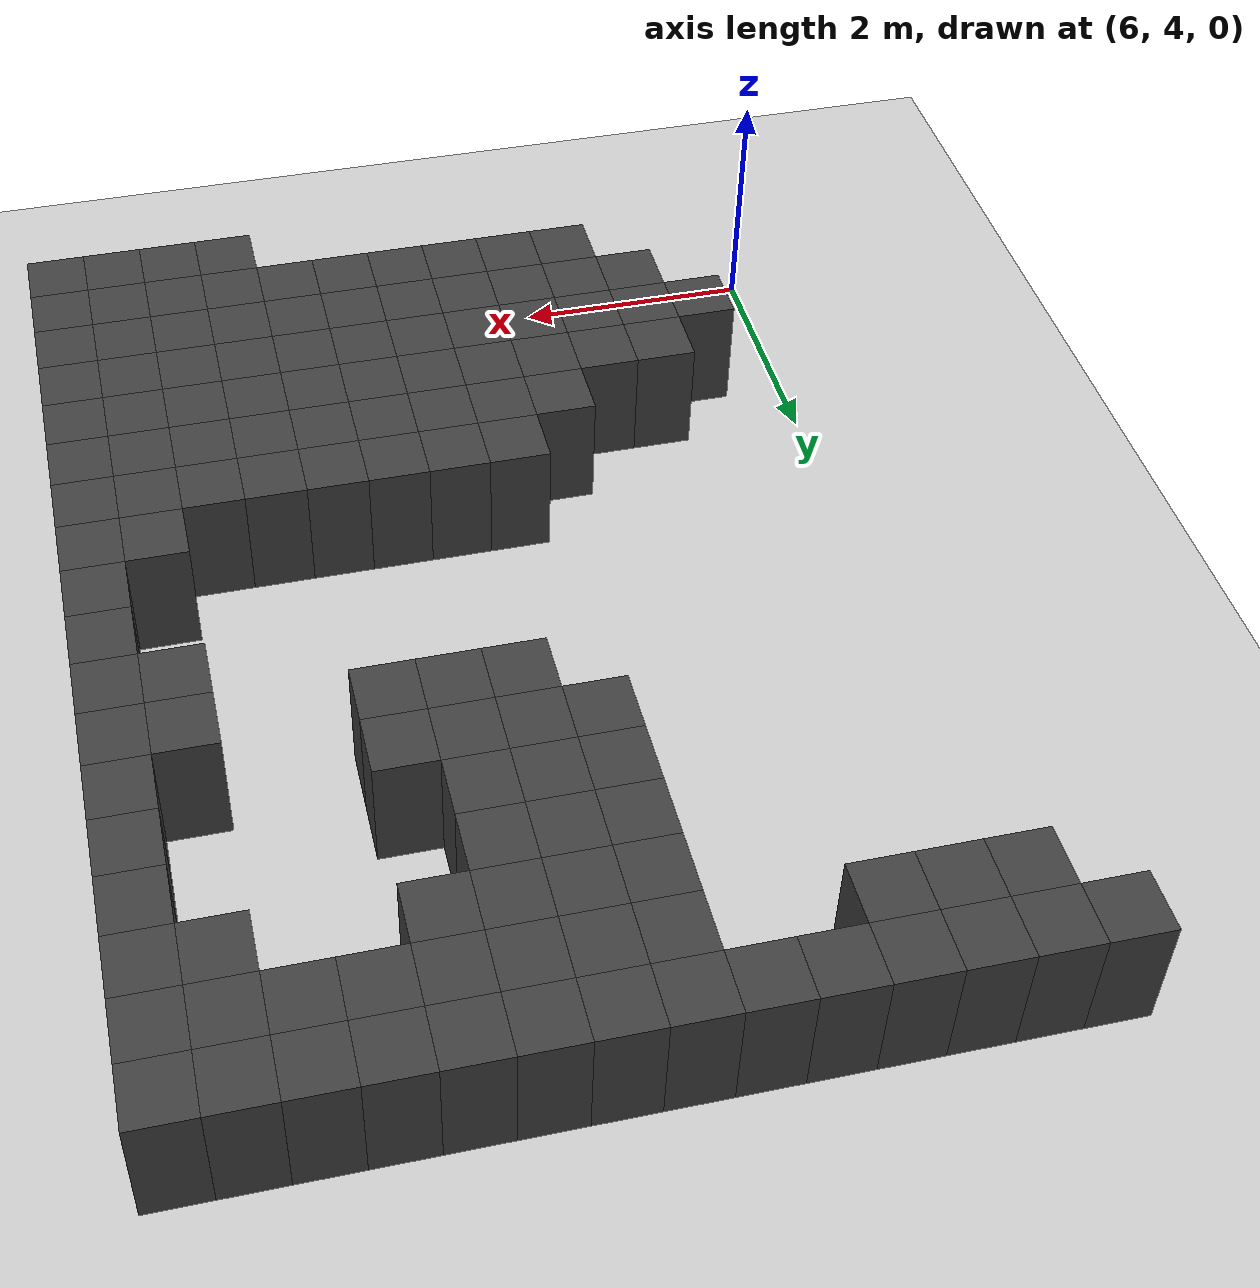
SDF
<sdf version="1.7">
 <world name="map_9705">
  <model name="ground_plane">
   <static>true</static>
   <link name="link">
    <collision name="collision">
     <geometry><plane><normal>0 0 1</normal><size>200 200</size></plane></geometry>
    </collision>
    <visual name="visual">
     <geometry><plane><normal>0 0 1</normal><size>200 200</size></plane></geometry>
     <material><ambient>0.8 0.8 0.8 1</ambient><diffuse>0.8 0.8 0.8 1</diffuse></material>
    </visual>
   </link>
  </model>
  <model name="maze_environment">
   <static>true</static>
   <link name="wall_36">
    <pose>5.750 12.250 0.500 0 0 0</pose>
    <collision name="col"><geometry><box><size>0.5 0.5 1.0</size></box></geometry></collision>
    <visual name="vis">
     <geometry><box><size>0.5 0.5 1.0</size></box></geometry>
     <material><ambient>0.15 0.15 0.15 1</ambient><diffuse>0.25 0.25 0.25 1</diffuse></material>
    </visual>
   </link>
   <link name="wall_37">
    <pose>6.250 12.250 0.500 0 0 0</pose>
    <collision name="col"><geometry><box><size>0.5 0.5 1.0</size></box></geometry></collision>
    <visual name="vis">
     <geometry><box><size>0.5 0.5 1.0</size></box></geometry>
     <material><ambient>0.15 0.15 0.15 1</ambient><diffuse>0.25 0.25 0.25 1</diffuse></material>
    </visual>
   </link>
   <link name="wall_38">
    <pose>6.750 12.250 0.500 0 0 0</pose>
    <collision name="col"><geometry><box><size>0.5 0.5 1.0</size></box></geometry></collision>
    <visual name="vis">
     <geometry><box><size>0.5 0.5 1.0</size></box></geometry>
     <material><ambient>0.15 0.15 0.15 1</ambient><diffuse>0.25 0.25 0.25 1</diffuse></material>
    </visual>
   </link>
   <link name="wall_39">
    <pose>7.250 12.250 0.500 0 0 0</pose>
    <collision name="col"><geometry><box><size>0.5 0.5 1.0</size></box></geometry></collision>
    <visual name="vis">
     <geometry><box><size>0.5 0.5 1.0</size></box></geometry>
     <material><ambient>0.15 0.15 0.15 1</ambient><diffuse>0.25 0.25 0.25 1</diffuse></material>
    </visual>
   </link>
   <link name="wall_40">
    <pose>7.750 12.250 0.500 0 0 0</pose>
    <collision name="col"><geometry><box><size>0.5 0.5 1.0</size></box></geometry></collision>
    <visual name="vis">
     <geometry><box><size>0.5 0.5 1.0</size></box></geometry>
     <material><ambient>0.15 0.15 0.15 1</ambient><diffuse>0.25 0.25 0.25 1</diffuse></material>
    </visual>
   </link>
   <link name="wall_41">
    <pose>8.250 12.250 0.500 0 0 0</pose>
    <collision name="col"><geometry><box><size>0.5 0.5 1.0</size></box></geometry></collision>
    <visual name="vis">
     <geometry><box><size>0.5 0.5 1.0</size></box></geometry>
     <material><ambient>0.15 0.15 0.15 1</ambient><diffuse>0.25 0.25 0.25 1</diffuse></material>
    </visual>
   </link>
   <link name="wall_42">
    <pose>8.750 12.250 0.500 0 0 0</pose>
    <collision name="col"><geometry><box><size>0.5 0.5 1.0</size></box></geometry></collision>
    <visual name="vis">
     <geometry><box><size>0.5 0.5 1.0</size></box></geometry>
     <material><ambient>0.15 0.15 0.15 1</ambient><diffuse>0.25 0.25 0.25 1</diffuse></material>
    </visual>
   </link>
   <link name="wall_43">
    <pose>9.250 12.250 0.500 0 0 0</pose>
    <collision name="col"><geometry><box><size>0.5 0.5 1.0</size></box></geometry></collision>
    <visual name="vis">
     <geometry><box><size>0.5 0.5 1.0</size></box></geometry>
     <material><ambient>0.15 0.15 0.15 1</ambient><diffuse>0.25 0.25 0.25 1</diffuse></material>
    </visual>
   </link>
   <link name="wall_44">
    <pose>9.750 12.250 0.500 0 0 0</pose>
    <collision name="col"><geometry><box><size>0.5 0.5 1.0</size></box></geometry></collision>
    <visual name="vis">
     <geometry><box><size>0.5 0.5 1.0</size></box></geometry>
     <material><ambient>0.15 0.15 0.15 1</ambient><diffuse>0.25 0.25 0.25 1</diffuse></material>
    </visual>
   </link>
   <link name="wall_45">
    <pose>10.250 12.250 0.500 0 0 0</pose>
    <collision name="col"><geometry><box><size>0.5 0.5 1.0</size></box></geometry></collision>
    <visual name="vis">
     <geometry><box><size>0.5 0.5 1.0</size></box></geometry>
     <material><ambient>0.15 0.15 0.15 1</ambient><diffuse>0.25 0.25 0.25 1</diffuse></material>
    </visual>
   </link>
   <link name="wall_46">
    <pose>10.750 12.250 0.500 0 0 0</pose>
    <collision name="col"><geometry><box><size>0.5 0.5 1.0</size></box></geometry></collision>
    <visual name="vis">
     <geometry><box><size>0.5 0.5 1.0</size></box></geometry>
     <material><ambient>0.15 0.15 0.15 1</ambient><diffuse>0.25 0.25 0.25 1</diffuse></material>
    </visual>
   </link>
   <link name="wall_47">
    <pose>11.250 12.250 0.500 0 0 0</pose>
    <collision name="col"><geometry><box><size>0.5 0.5 1.0</size></box></geometry></collision>
    <visual name="vis">
     <geometry><box><size>0.5 0.5 1.0</size></box></geometry>
     <material><ambient>0.15 0.15 0.15 1</ambient><diffuse>0.25 0.25 0.25 1</diffuse></material>
    </visual>
   </link>
   <link name="wall_48">
    <pose>11.750 12.250 0.500 0 0 0</pose>
    <collision name="col"><geometry><box><size>0.5 0.5 1.0</size></box></geometry></collision>
    <visual name="vis">
     <geometry><box><size>0.5 0.5 1.0</size></box></geometry>
     <material><ambient>0.15 0.15 0.15 1</ambient><diffuse>0.25 0.25 0.25 1</diffuse></material>
    </visual>
   </link>
   <link name="wall_49">
    <pose>12.250 12.250 0.500 0 0 0</pose>
    <collision name="col"><geometry><box><size>0.5 0.5 1.0</size></box></geometry></collision>
    <visual name="vis">
     <geometry><box><size>0.5 0.5 1.0</size></box></geometry>
     <material><ambient>0.15 0.15 0.15 1</ambient><diffuse>0.25 0.25 0.25 1</diffuse></material>
    </visual>
   </link>
   <link name="wall_68">
    <pose>6.250 11.750 0.500 0 0 0</pose>
    <collision name="col"><geometry><box><size>0.5 0.5 1.0</size></box></geometry></collision>
    <visual name="vis">
     <geometry><box><size>0.5 0.5 1.0</size></box></geometry>
     <material><ambient>0.15 0.15 0.15 1</ambient><diffuse>0.25 0.25 0.25 1</diffuse></material>
    </visual>
   </link>
   <link name="wall_69">
    <pose>6.750 11.750 0.500 0 0 0</pose>
    <collision name="col"><geometry><box><size>0.5 0.5 1.0</size></box></geometry></collision>
    <visual name="vis">
     <geometry><box><size>0.5 0.5 1.0</size></box></geometry>
     <material><ambient>0.15 0.15 0.15 1</ambient><diffuse>0.25 0.25 0.25 1</diffuse></material>
    </visual>
   </link>
   <link name="wall_70">
    <pose>7.250 11.750 0.500 0 0 0</pose>
    <collision name="col"><geometry><box><size>0.5 0.5 1.0</size></box></geometry></collision>
    <visual name="vis">
     <geometry><box><size>0.5 0.5 1.0</size></box></geometry>
     <material><ambient>0.15 0.15 0.15 1</ambient><diffuse>0.25 0.25 0.25 1</diffuse></material>
    </visual>
   </link>
   <link name="wall_71">
    <pose>8.750 11.750 0.500 0 0 0</pose>
    <collision name="col"><geometry><box><size>0.5 0.5 1.0</size></box></geometry></collision>
    <visual name="vis">
     <geometry><box><size>0.5 0.5 1.0</size></box></geometry>
     <material><ambient>0.15 0.15 0.15 1</ambient><diffuse>0.25 0.25 0.25 1</diffuse></material>
    </visual>
   </link>
   <link name="wall_72">
    <pose>9.250 11.750 0.500 0 0 0</pose>
    <collision name="col"><geometry><box><size>0.5 0.5 1.0</size></box></geometry></collision>
    <visual name="vis">
     <geometry><box><size>0.5 0.5 1.0</size></box></geometry>
     <material><ambient>0.15 0.15 0.15 1</ambient><diffuse>0.25 0.25 0.25 1</diffuse></material>
    </visual>
   </link>
   <link name="wall_73">
    <pose>9.750 11.750 0.500 0 0 0</pose>
    <collision name="col"><geometry><box><size>0.5 0.5 1.0</size></box></geometry></collision>
    <visual name="vis">
     <geometry><box><size>0.5 0.5 1.0</size></box></geometry>
     <material><ambient>0.15 0.15 0.15 1</ambient><diffuse>0.25 0.25 0.25 1</diffuse></material>
    </visual>
   </link>
   <link name="wall_74">
    <pose>10.250 11.750 0.500 0 0 0</pose>
    <collision name="col"><geometry><box><size>0.5 0.5 1.0</size></box></geometry></collision>
    <visual name="vis">
     <geometry><box><size>0.5 0.5 1.0</size></box></geometry>
     <material><ambient>0.15 0.15 0.15 1</ambient><diffuse>0.25 0.25 0.25 1</diffuse></material>
    </visual>
   </link>
   <link name="wall_75">
    <pose>10.750 11.750 0.500 0 0 0</pose>
    <collision name="col"><geometry><box><size>0.5 0.5 1.0</size></box></geometry></collision>
    <visual name="vis">
     <geometry><box><size>0.5 0.5 1.0</size></box></geometry>
     <material><ambient>0.15 0.15 0.15 1</ambient><diffuse>0.25 0.25 0.25 1</diffuse></material>
    </visual>
   </link>
   <link name="wall_76">
    <pose>11.250 11.750 0.500 0 0 0</pose>
    <collision name="col"><geometry><box><size>0.5 0.5 1.0</size></box></geometry></collision>
    <visual name="vis">
     <geometry><box><size>0.5 0.5 1.0</size></box></geometry>
     <material><ambient>0.15 0.15 0.15 1</ambient><diffuse>0.25 0.25 0.25 1</diffuse></material>
    </visual>
   </link>
   <link name="wall_77">
    <pose>11.750 11.750 0.500 0 0 0</pose>
    <collision name="col"><geometry><box><size>0.5 0.5 1.0</size></box></geometry></collision>
    <visual name="vis">
     <geometry><box><size>0.5 0.5 1.0</size></box></geometry>
     <material><ambient>0.15 0.15 0.15 1</ambient><diffuse>0.25 0.25 0.25 1</diffuse></material>
    </visual>
   </link>
   <link name="wall_78">
    <pose>12.250 11.750 0.500 0 0 0</pose>
    <collision name="col"><geometry><box><size>0.5 0.5 1.0</size></box></geometry></collision>
    <visual name="vis">
     <geometry><box><size>0.5 0.5 1.0</size></box></geometry>
     <material><ambient>0.15 0.15 0.15 1</ambient><diffuse>0.25 0.25 0.25 1</diffuse></material>
    </visual>
   </link>
   <link name="wall_93">
    <pose>8.750 11.250 0.500 0 0 0</pose>
    <collision name="col"><geometry><box><size>0.5 0.5 1.0</size></box></geometry></collision>
    <visual name="vis">
     <geometry><box><size>0.5 0.5 1.0</size></box></geometry>
     <material><ambient>0.15 0.15 0.15 1</ambient><diffuse>0.25 0.25 0.25 1</diffuse></material>
    </visual>
   </link>
   <link name="wall_94">
    <pose>9.250 11.250 0.500 0 0 0</pose>
    <collision name="col"><geometry><box><size>0.5 0.5 1.0</size></box></geometry></collision>
    <visual name="vis">
     <geometry><box><size>0.5 0.5 1.0</size></box></geometry>
     <material><ambient>0.15 0.15 0.15 1</ambient><diffuse>0.25 0.25 0.25 1</diffuse></material>
    </visual>
   </link>
   <link name="wall_95">
    <pose>9.750 11.250 0.500 0 0 0</pose>
    <collision name="col"><geometry><box><size>0.5 0.5 1.0</size></box></geometry></collision>
    <visual name="vis">
     <geometry><box><size>0.5 0.5 1.0</size></box></geometry>
     <material><ambient>0.15 0.15 0.15 1</ambient><diffuse>0.25 0.25 0.25 1</diffuse></material>
    </visual>
   </link>
   <link name="wall_96">
    <pose>10.250 11.250 0.500 0 0 0</pose>
    <collision name="col"><geometry><box><size>0.5 0.5 1.0</size></box></geometry></collision>
    <visual name="vis">
     <geometry><box><size>0.5 0.5 1.0</size></box></geometry>
     <material><ambient>0.15 0.15 0.15 1</ambient><diffuse>0.25 0.25 0.25 1</diffuse></material>
    </visual>
   </link>
   <link name="wall_97">
    <pose>11.750 11.250 0.500 0 0 0</pose>
    <collision name="col"><geometry><box><size>0.5 0.5 1.0</size></box></geometry></collision>
    <visual name="vis">
     <geometry><box><size>0.5 0.5 1.0</size></box></geometry>
     <material><ambient>0.15 0.15 0.15 1</ambient><diffuse>0.25 0.25 0.25 1</diffuse></material>
    </visual>
   </link>
   <link name="wall_98">
    <pose>12.250 11.250 0.500 0 0 0</pose>
    <collision name="col"><geometry><box><size>0.5 0.5 1.0</size></box></geometry></collision>
    <visual name="vis">
     <geometry><box><size>0.5 0.5 1.0</size></box></geometry>
     <material><ambient>0.15 0.15 0.15 1</ambient><diffuse>0.25 0.25 0.25 1</diffuse></material>
    </visual>
   </link>
   <link name="wall_110">
    <pose>8.750 10.750 0.500 0 0 0</pose>
    <collision name="col"><geometry><box><size>0.5 0.5 1.0</size></box></geometry></collision>
    <visual name="vis">
     <geometry><box><size>0.5 0.5 1.0</size></box></geometry>
     <material><ambient>0.15 0.15 0.15 1</ambient><diffuse>0.25 0.25 0.25 1</diffuse></material>
    </visual>
   </link>
   <link name="wall_111">
    <pose>9.250 10.750 0.500 0 0 0</pose>
    <collision name="col"><geometry><box><size>0.5 0.5 1.0</size></box></geometry></collision>
    <visual name="vis">
     <geometry><box><size>0.5 0.5 1.0</size></box></geometry>
     <material><ambient>0.15 0.15 0.15 1</ambient><diffuse>0.25 0.25 0.25 1</diffuse></material>
    </visual>
   </link>
   <link name="wall_112">
    <pose>9.750 10.750 0.500 0 0 0</pose>
    <collision name="col"><geometry><box><size>0.5 0.5 1.0</size></box></geometry></collision>
    <visual name="vis">
     <geometry><box><size>0.5 0.5 1.0</size></box></geometry>
     <material><ambient>0.15 0.15 0.15 1</ambient><diffuse>0.25 0.25 0.25 1</diffuse></material>
    </visual>
   </link>
   <link name="wall_113">
    <pose>12.250 10.750 0.500 0 0 0</pose>
    <collision name="col"><geometry><box><size>0.5 0.5 1.0</size></box></geometry></collision>
    <visual name="vis">
     <geometry><box><size>0.5 0.5 1.0</size></box></geometry>
     <material><ambient>0.15 0.15 0.15 1</ambient><diffuse>0.25 0.25 0.25 1</diffuse></material>
    </visual>
   </link>
   <link name="wall_129">
    <pose>8.750 10.250 0.500 0 0 0</pose>
    <collision name="col"><geometry><box><size>0.5 0.5 1.0</size></box></geometry></collision>
    <visual name="vis">
     <geometry><box><size>0.5 0.5 1.0</size></box></geometry>
     <material><ambient>0.15 0.15 0.15 1</ambient><diffuse>0.25 0.25 0.25 1</diffuse></material>
    </visual>
   </link>
   <link name="wall_130">
    <pose>9.250 10.250 0.500 0 0 0</pose>
    <collision name="col"><geometry><box><size>0.5 0.5 1.0</size></box></geometry></collision>
    <visual name="vis">
     <geometry><box><size>0.5 0.5 1.0</size></box></geometry>
     <material><ambient>0.15 0.15 0.15 1</ambient><diffuse>0.25 0.25 0.25 1</diffuse></material>
    </visual>
   </link>
   <link name="wall_131">
    <pose>9.750 10.250 0.500 0 0 0</pose>
    <collision name="col"><geometry><box><size>0.5 0.5 1.0</size></box></geometry></collision>
    <visual name="vis">
     <geometry><box><size>0.5 0.5 1.0</size></box></geometry>
     <material><ambient>0.15 0.15 0.15 1</ambient><diffuse>0.25 0.25 0.25 1</diffuse></material>
    </visual>
   </link>
   <link name="wall_132">
    <pose>12.250 10.250 0.500 0 0 0</pose>
    <collision name="col"><geometry><box><size>0.5 0.5 1.0</size></box></geometry></collision>
    <visual name="vis">
     <geometry><box><size>0.5 0.5 1.0</size></box></geometry>
     <material><ambient>0.15 0.15 0.15 1</ambient><diffuse>0.25 0.25 0.25 1</diffuse></material>
    </visual>
   </link>
   <link name="wall_151">
    <pose>8.750 9.750 0.500 0 0 0</pose>
    <collision name="col"><geometry><box><size>0.5 0.5 1.0</size></box></geometry></collision>
    <visual name="vis">
     <geometry><box><size>0.5 0.5 1.0</size></box></geometry>
     <material><ambient>0.15 0.15 0.15 1</ambient><diffuse>0.25 0.25 0.25 1</diffuse></material>
    </visual>
   </link>
   <link name="wall_152">
    <pose>9.250 9.750 0.500 0 0 0</pose>
    <collision name="col"><geometry><box><size>0.5 0.5 1.0</size></box></geometry></collision>
    <visual name="vis">
     <geometry><box><size>0.5 0.5 1.0</size></box></geometry>
     <material><ambient>0.15 0.15 0.15 1</ambient><diffuse>0.25 0.25 0.25 1</diffuse></material>
    </visual>
   </link>
   <link name="wall_153">
    <pose>9.750 9.750 0.500 0 0 0</pose>
    <collision name="col"><geometry><box><size>0.5 0.5 1.0</size></box></geometry></collision>
    <visual name="vis">
     <geometry><box><size>0.5 0.5 1.0</size></box></geometry>
     <material><ambient>0.15 0.15 0.15 1</ambient><diffuse>0.25 0.25 0.25 1</diffuse></material>
    </visual>
   </link>
   <link name="wall_154">
    <pose>10.250 9.750 0.500 0 0 0</pose>
    <collision name="col"><geometry><box><size>0.5 0.5 1.0</size></box></geometry></collision>
    <visual name="vis">
     <geometry><box><size>0.5 0.5 1.0</size></box></geometry>
     <material><ambient>0.15 0.15 0.15 1</ambient><diffuse>0.25 0.25 0.25 1</diffuse></material>
    </visual>
   </link>
   <link name="wall_155">
    <pose>12.250 9.750 0.500 0 0 0</pose>
    <collision name="col"><geometry><box><size>0.5 0.5 1.0</size></box></geometry></collision>
    <visual name="vis">
     <geometry><box><size>0.5 0.5 1.0</size></box></geometry>
     <material><ambient>0.15 0.15 0.15 1</ambient><diffuse>0.25 0.25 0.25 1</diffuse></material>
    </visual>
   </link>
   <link name="wall_175">
    <pose>9.250 9.250 0.500 0 0 0</pose>
    <collision name="col"><geometry><box><size>0.5 0.5 1.0</size></box></geometry></collision>
    <visual name="vis">
     <geometry><box><size>0.5 0.5 1.0</size></box></geometry>
     <material><ambient>0.15 0.15 0.15 1</ambient><diffuse>0.25 0.25 0.25 1</diffuse></material>
    </visual>
   </link>
   <link name="wall_176">
    <pose>9.750 9.250 0.500 0 0 0</pose>
    <collision name="col"><geometry><box><size>0.5 0.5 1.0</size></box></geometry></collision>
    <visual name="vis">
     <geometry><box><size>0.5 0.5 1.0</size></box></geometry>
     <material><ambient>0.15 0.15 0.15 1</ambient><diffuse>0.25 0.25 0.25 1</diffuse></material>
    </visual>
   </link>
   <link name="wall_177">
    <pose>10.250 9.250 0.500 0 0 0</pose>
    <collision name="col"><geometry><box><size>0.5 0.5 1.0</size></box></geometry></collision>
    <visual name="vis">
     <geometry><box><size>0.5 0.5 1.0</size></box></geometry>
     <material><ambient>0.15 0.15 0.15 1</ambient><diffuse>0.25 0.25 0.25 1</diffuse></material>
    </visual>
   </link>
   <link name="wall_178">
    <pose>11.750 9.250 0.500 0 0 0</pose>
    <collision name="col"><geometry><box><size>0.5 0.5 1.0</size></box></geometry></collision>
    <visual name="vis">
     <geometry><box><size>0.5 0.5 1.0</size></box></geometry>
     <material><ambient>0.15 0.15 0.15 1</ambient><diffuse>0.25 0.25 0.25 1</diffuse></material>
    </visual>
   </link>
   <link name="wall_179">
    <pose>12.250 9.250 0.500 0 0 0</pose>
    <collision name="col"><geometry><box><size>0.5 0.5 1.0</size></box></geometry></collision>
    <visual name="vis">
     <geometry><box><size>0.5 0.5 1.0</size></box></geometry>
     <material><ambient>0.15 0.15 0.15 1</ambient><diffuse>0.25 0.25 0.25 1</diffuse></material>
    </visual>
   </link>
   <link name="wall_194">
    <pose>11.750 8.750 0.500 0 0 0</pose>
    <collision name="col"><geometry><box><size>0.5 0.5 1.0</size></box></geometry></collision>
    <visual name="vis">
     <geometry><box><size>0.5 0.5 1.0</size></box></geometry>
     <material><ambient>0.15 0.15 0.15 1</ambient><diffuse>0.25 0.25 0.25 1</diffuse></material>
    </visual>
   </link>
   <link name="wall_195">
    <pose>12.250 8.750 0.500 0 0 0</pose>
    <collision name="col"><geometry><box><size>0.5 0.5 1.0</size></box></geometry></collision>
    <visual name="vis">
     <geometry><box><size>0.5 0.5 1.0</size></box></geometry>
     <material><ambient>0.15 0.15 0.15 1</ambient><diffuse>0.25 0.25 0.25 1</diffuse></material>
    </visual>
   </link>
   <link name="wall_208">
    <pose>12.250 8.250 0.500 0 0 0</pose>
    <collision name="col"><geometry><box><size>0.5 0.5 1.0</size></box></geometry></collision>
    <visual name="vis">
     <geometry><box><size>0.5 0.5 1.0</size></box></geometry>
     <material><ambient>0.15 0.15 0.15 1</ambient><diffuse>0.25 0.25 0.25 1</diffuse></material>
    </visual>
   </link>
   <link name="wall_217">
    <pose>12.250 7.750 0.500 0 0 0</pose>
    <collision name="col"><geometry><box><size>0.5 0.5 1.0</size></box></geometry></collision>
    <visual name="vis">
     <geometry><box><size>0.5 0.5 1.0</size></box></geometry>
     <material><ambient>0.15 0.15 0.15 1</ambient><diffuse>0.25 0.25 0.25 1</diffuse></material>
    </visual>
   </link>
   <link name="wall_229">
    <pose>11.750 7.250 0.500 0 0 0</pose>
    <collision name="col"><geometry><box><size>0.5 0.5 1.0</size></box></geometry></collision>
    <visual name="vis">
     <geometry><box><size>0.5 0.5 1.0</size></box></geometry>
     <material><ambient>0.15 0.15 0.15 1</ambient><diffuse>0.25 0.25 0.25 1</diffuse></material>
    </visual>
   </link>
   <link name="wall_230">
    <pose>12.250 7.250 0.500 0 0 0</pose>
    <collision name="col"><geometry><box><size>0.5 0.5 1.0</size></box></geometry></collision>
    <visual name="vis">
     <geometry><box><size>0.5 0.5 1.0</size></box></geometry>
     <material><ambient>0.15 0.15 0.15 1</ambient><diffuse>0.25 0.25 0.25 1</diffuse></material>
    </visual>
   </link>
   <link name="wall_244">
    <pose>8.750 6.750 0.500 0 0 0</pose>
    <collision name="col"><geometry><box><size>0.5 0.5 1.0</size></box></geometry></collision>
    <visual name="vis">
     <geometry><box><size>0.5 0.5 1.0</size></box></geometry>
     <material><ambient>0.15 0.15 0.15 1</ambient><diffuse>0.25 0.25 0.25 1</diffuse></material>
    </visual>
   </link>
   <link name="wall_245">
    <pose>9.250 6.750 0.500 0 0 0</pose>
    <collision name="col"><geometry><box><size>0.5 0.5 1.0</size></box></geometry></collision>
    <visual name="vis">
     <geometry><box><size>0.5 0.5 1.0</size></box></geometry>
     <material><ambient>0.15 0.15 0.15 1</ambient><diffuse>0.25 0.25 0.25 1</diffuse></material>
    </visual>
   </link>
   <link name="wall_246">
    <pose>9.750 6.750 0.500 0 0 0</pose>
    <collision name="col"><geometry><box><size>0.5 0.5 1.0</size></box></geometry></collision>
    <visual name="vis">
     <geometry><box><size>0.5 0.5 1.0</size></box></geometry>
     <material><ambient>0.15 0.15 0.15 1</ambient><diffuse>0.25 0.25 0.25 1</diffuse></material>
    </visual>
   </link>
   <link name="wall_247">
    <pose>10.250 6.750 0.500 0 0 0</pose>
    <collision name="col"><geometry><box><size>0.5 0.5 1.0</size></box></geometry></collision>
    <visual name="vis">
     <geometry><box><size>0.5 0.5 1.0</size></box></geometry>
     <material><ambient>0.15 0.15 0.15 1</ambient><diffuse>0.25 0.25 0.25 1</diffuse></material>
    </visual>
   </link>
   <link name="wall_248">
    <pose>10.750 6.750 0.500 0 0 0</pose>
    <collision name="col"><geometry><box><size>0.5 0.5 1.0</size></box></geometry></collision>
    <visual name="vis">
     <geometry><box><size>0.5 0.5 1.0</size></box></geometry>
     <material><ambient>0.15 0.15 0.15 1</ambient><diffuse>0.25 0.25 0.25 1</diffuse></material>
    </visual>
   </link>
   <link name="wall_249">
    <pose>11.250 6.750 0.500 0 0 0</pose>
    <collision name="col"><geometry><box><size>0.5 0.5 1.0</size></box></geometry></collision>
    <visual name="vis">
     <geometry><box><size>0.5 0.5 1.0</size></box></geometry>
     <material><ambient>0.15 0.15 0.15 1</ambient><diffuse>0.25 0.25 0.25 1</diffuse></material>
    </visual>
   </link>
   <link name="wall_250">
    <pose>11.750 6.750 0.500 0 0 0</pose>
    <collision name="col"><geometry><box><size>0.5 0.5 1.0</size></box></geometry></collision>
    <visual name="vis">
     <geometry><box><size>0.5 0.5 1.0</size></box></geometry>
     <material><ambient>0.15 0.15 0.15 1</ambient><diffuse>0.25 0.25 0.25 1</diffuse></material>
    </visual>
   </link>
   <link name="wall_251">
    <pose>12.250 6.750 0.500 0 0 0</pose>
    <collision name="col"><geometry><box><size>0.5 0.5 1.0</size></box></geometry></collision>
    <visual name="vis">
     <geometry><box><size>0.5 0.5 1.0</size></box></geometry>
     <material><ambient>0.15 0.15 0.15 1</ambient><diffuse>0.25 0.25 0.25 1</diffuse></material>
    </visual>
   </link>
   <link name="wall_276">
    <pose>8.250 6.250 0.500 0 0 0</pose>
    <collision name="col"><geometry><box><size>0.5 0.5 1.0</size></box></geometry></collision>
    <visual name="vis">
     <geometry><box><size>0.5 0.5 1.0</size></box></geometry>
     <material><ambient>0.15 0.15 0.15 1</ambient><diffuse>0.25 0.25 0.25 1</diffuse></material>
    </visual>
   </link>
   <link name="wall_277">
    <pose>8.750 6.250 0.500 0 0 0</pose>
    <collision name="col"><geometry><box><size>0.5 0.5 1.0</size></box></geometry></collision>
    <visual name="vis">
     <geometry><box><size>0.5 0.5 1.0</size></box></geometry>
     <material><ambient>0.15 0.15 0.15 1</ambient><diffuse>0.25 0.25 0.25 1</diffuse></material>
    </visual>
   </link>
   <link name="wall_278">
    <pose>9.250 6.250 0.500 0 0 0</pose>
    <collision name="col"><geometry><box><size>0.5 0.5 1.0</size></box></geometry></collision>
    <visual name="vis">
     <geometry><box><size>0.5 0.5 1.0</size></box></geometry>
     <material><ambient>0.15 0.15 0.15 1</ambient><diffuse>0.25 0.25 0.25 1</diffuse></material>
    </visual>
   </link>
   <link name="wall_279">
    <pose>9.750 6.250 0.500 0 0 0</pose>
    <collision name="col"><geometry><box><size>0.5 0.5 1.0</size></box></geometry></collision>
    <visual name="vis">
     <geometry><box><size>0.5 0.5 1.0</size></box></geometry>
     <material><ambient>0.15 0.15 0.15 1</ambient><diffuse>0.25 0.25 0.25 1</diffuse></material>
    </visual>
   </link>
   <link name="wall_280">
    <pose>10.250 6.250 0.500 0 0 0</pose>
    <collision name="col"><geometry><box><size>0.5 0.5 1.0</size></box></geometry></collision>
    <visual name="vis">
     <geometry><box><size>0.5 0.5 1.0</size></box></geometry>
     <material><ambient>0.15 0.15 0.15 1</ambient><diffuse>0.25 0.25 0.25 1</diffuse></material>
    </visual>
   </link>
   <link name="wall_281">
    <pose>10.750 6.250 0.500 0 0 0</pose>
    <collision name="col"><geometry><box><size>0.5 0.5 1.0</size></box></geometry></collision>
    <visual name="vis">
     <geometry><box><size>0.5 0.5 1.0</size></box></geometry>
     <material><ambient>0.15 0.15 0.15 1</ambient><diffuse>0.25 0.25 0.25 1</diffuse></material>
    </visual>
   </link>
   <link name="wall_282">
    <pose>11.250 6.250 0.500 0 0 0</pose>
    <collision name="col"><geometry><box><size>0.5 0.5 1.0</size></box></geometry></collision>
    <visual name="vis">
     <geometry><box><size>0.5 0.5 1.0</size></box></geometry>
     <material><ambient>0.15 0.15 0.15 1</ambient><diffuse>0.25 0.25 0.25 1</diffuse></material>
    </visual>
   </link>
   <link name="wall_283">
    <pose>11.750 6.250 0.500 0 0 0</pose>
    <collision name="col"><geometry><box><size>0.5 0.5 1.0</size></box></geometry></collision>
    <visual name="vis">
     <geometry><box><size>0.5 0.5 1.0</size></box></geometry>
     <material><ambient>0.15 0.15 0.15 1</ambient><diffuse>0.25 0.25 0.25 1</diffuse></material>
    </visual>
   </link>
   <link name="wall_284">
    <pose>12.250 6.250 0.500 0 0 0</pose>
    <collision name="col"><geometry><box><size>0.5 0.5 1.0</size></box></geometry></collision>
    <visual name="vis">
     <geometry><box><size>0.5 0.5 1.0</size></box></geometry>
     <material><ambient>0.15 0.15 0.15 1</ambient><diffuse>0.25 0.25 0.25 1</diffuse></material>
    </visual>
   </link>
   <link name="wall_307">
    <pose>7.250 5.750 0.500 0 0 0</pose>
    <collision name="col"><geometry><box><size>0.5 0.5 1.0</size></box></geometry></collision>
    <visual name="vis">
     <geometry><box><size>0.5 0.5 1.0</size></box></geometry>
     <material><ambient>0.15 0.15 0.15 1</ambient><diffuse>0.25 0.25 0.25 1</diffuse></material>
    </visual>
   </link>
   <link name="wall_308">
    <pose>7.750 5.750 0.500 0 0 0</pose>
    <collision name="col"><geometry><box><size>0.5 0.5 1.0</size></box></geometry></collision>
    <visual name="vis">
     <geometry><box><size>0.5 0.5 1.0</size></box></geometry>
     <material><ambient>0.15 0.15 0.15 1</ambient><diffuse>0.25 0.25 0.25 1</diffuse></material>
    </visual>
   </link>
   <link name="wall_309">
    <pose>8.250 5.750 0.500 0 0 0</pose>
    <collision name="col"><geometry><box><size>0.5 0.5 1.0</size></box></geometry></collision>
    <visual name="vis">
     <geometry><box><size>0.5 0.5 1.0</size></box></geometry>
     <material><ambient>0.15 0.15 0.15 1</ambient><diffuse>0.25 0.25 0.25 1</diffuse></material>
    </visual>
   </link>
   <link name="wall_310">
    <pose>8.750 5.750 0.500 0 0 0</pose>
    <collision name="col"><geometry><box><size>0.5 0.5 1.0</size></box></geometry></collision>
    <visual name="vis">
     <geometry><box><size>0.5 0.5 1.0</size></box></geometry>
     <material><ambient>0.15 0.15 0.15 1</ambient><diffuse>0.25 0.25 0.25 1</diffuse></material>
    </visual>
   </link>
   <link name="wall_311">
    <pose>9.250 5.750 0.500 0 0 0</pose>
    <collision name="col"><geometry><box><size>0.5 0.5 1.0</size></box></geometry></collision>
    <visual name="vis">
     <geometry><box><size>0.5 0.5 1.0</size></box></geometry>
     <material><ambient>0.15 0.15 0.15 1</ambient><diffuse>0.25 0.25 0.25 1</diffuse></material>
    </visual>
   </link>
   <link name="wall_312">
    <pose>9.750 5.750 0.500 0 0 0</pose>
    <collision name="col"><geometry><box><size>0.5 0.5 1.0</size></box></geometry></collision>
    <visual name="vis">
     <geometry><box><size>0.5 0.5 1.0</size></box></geometry>
     <material><ambient>0.15 0.15 0.15 1</ambient><diffuse>0.25 0.25 0.25 1</diffuse></material>
    </visual>
   </link>
   <link name="wall_313">
    <pose>10.250 5.750 0.500 0 0 0</pose>
    <collision name="col"><geometry><box><size>0.5 0.5 1.0</size></box></geometry></collision>
    <visual name="vis">
     <geometry><box><size>0.5 0.5 1.0</size></box></geometry>
     <material><ambient>0.15 0.15 0.15 1</ambient><diffuse>0.25 0.25 0.25 1</diffuse></material>
    </visual>
   </link>
   <link name="wall_314">
    <pose>10.750 5.750 0.500 0 0 0</pose>
    <collision name="col"><geometry><box><size>0.5 0.5 1.0</size></box></geometry></collision>
    <visual name="vis">
     <geometry><box><size>0.5 0.5 1.0</size></box></geometry>
     <material><ambient>0.15 0.15 0.15 1</ambient><diffuse>0.25 0.25 0.25 1</diffuse></material>
    </visual>
   </link>
   <link name="wall_315">
    <pose>11.250 5.750 0.500 0 0 0</pose>
    <collision name="col"><geometry><box><size>0.5 0.5 1.0</size></box></geometry></collision>
    <visual name="vis">
     <geometry><box><size>0.5 0.5 1.0</size></box></geometry>
     <material><ambient>0.15 0.15 0.15 1</ambient><diffuse>0.25 0.25 0.25 1</diffuse></material>
    </visual>
   </link>
   <link name="wall_316">
    <pose>11.750 5.750 0.500 0 0 0</pose>
    <collision name="col"><geometry><box><size>0.5 0.5 1.0</size></box></geometry></collision>
    <visual name="vis">
     <geometry><box><size>0.5 0.5 1.0</size></box></geometry>
     <material><ambient>0.15 0.15 0.15 1</ambient><diffuse>0.25 0.25 0.25 1</diffuse></material>
    </visual>
   </link>
   <link name="wall_317">
    <pose>12.250 5.750 0.500 0 0 0</pose>
    <collision name="col"><geometry><box><size>0.5 0.5 1.0</size></box></geometry></collision>
    <visual name="vis">
     <geometry><box><size>0.5 0.5 1.0</size></box></geometry>
     <material><ambient>0.15 0.15 0.15 1</ambient><diffuse>0.25 0.25 0.25 1</diffuse></material>
    </visual>
   </link>
   <link name="wall_336">
    <pose>6.750 5.250 0.500 0 0 0</pose>
    <collision name="col"><geometry><box><size>0.5 0.5 1.0</size></box></geometry></collision>
    <visual name="vis">
     <geometry><box><size>0.5 0.5 1.0</size></box></geometry>
     <material><ambient>0.15 0.15 0.15 1</ambient><diffuse>0.25 0.25 0.25 1</diffuse></material>
    </visual>
   </link>
   <link name="wall_337">
    <pose>7.250 5.250 0.500 0 0 0</pose>
    <collision name="col"><geometry><box><size>0.5 0.5 1.0</size></box></geometry></collision>
    <visual name="vis">
     <geometry><box><size>0.5 0.5 1.0</size></box></geometry>
     <material><ambient>0.15 0.15 0.15 1</ambient><diffuse>0.25 0.25 0.25 1</diffuse></material>
    </visual>
   </link>
   <link name="wall_338">
    <pose>7.750 5.250 0.500 0 0 0</pose>
    <collision name="col"><geometry><box><size>0.5 0.5 1.0</size></box></geometry></collision>
    <visual name="vis">
     <geometry><box><size>0.5 0.5 1.0</size></box></geometry>
     <material><ambient>0.15 0.15 0.15 1</ambient><diffuse>0.25 0.25 0.25 1</diffuse></material>
    </visual>
   </link>
   <link name="wall_339">
    <pose>8.250 5.250 0.500 0 0 0</pose>
    <collision name="col"><geometry><box><size>0.5 0.5 1.0</size></box></geometry></collision>
    <visual name="vis">
     <geometry><box><size>0.5 0.5 1.0</size></box></geometry>
     <material><ambient>0.15 0.15 0.15 1</ambient><diffuse>0.25 0.25 0.25 1</diffuse></material>
    </visual>
   </link>
   <link name="wall_340">
    <pose>8.750 5.250 0.500 0 0 0</pose>
    <collision name="col"><geometry><box><size>0.5 0.5 1.0</size></box></geometry></collision>
    <visual name="vis">
     <geometry><box><size>0.5 0.5 1.0</size></box></geometry>
     <material><ambient>0.15 0.15 0.15 1</ambient><diffuse>0.25 0.25 0.25 1</diffuse></material>
    </visual>
   </link>
   <link name="wall_341">
    <pose>9.250 5.250 0.500 0 0 0</pose>
    <collision name="col"><geometry><box><size>0.5 0.5 1.0</size></box></geometry></collision>
    <visual name="vis">
     <geometry><box><size>0.5 0.5 1.0</size></box></geometry>
     <material><ambient>0.15 0.15 0.15 1</ambient><diffuse>0.25 0.25 0.25 1</diffuse></material>
    </visual>
   </link>
   <link name="wall_342">
    <pose>9.750 5.250 0.500 0 0 0</pose>
    <collision name="col"><geometry><box><size>0.5 0.5 1.0</size></box></geometry></collision>
    <visual name="vis">
     <geometry><box><size>0.5 0.5 1.0</size></box></geometry>
     <material><ambient>0.15 0.15 0.15 1</ambient><diffuse>0.25 0.25 0.25 1</diffuse></material>
    </visual>
   </link>
   <link name="wall_343">
    <pose>10.250 5.250 0.500 0 0 0</pose>
    <collision name="col"><geometry><box><size>0.5 0.5 1.0</size></box></geometry></collision>
    <visual name="vis">
     <geometry><box><size>0.5 0.5 1.0</size></box></geometry>
     <material><ambient>0.15 0.15 0.15 1</ambient><diffuse>0.25 0.25 0.25 1</diffuse></material>
    </visual>
   </link>
   <link name="wall_344">
    <pose>10.750 5.250 0.500 0 0 0</pose>
    <collision name="col"><geometry><box><size>0.5 0.5 1.0</size></box></geometry></collision>
    <visual name="vis">
     <geometry><box><size>0.5 0.5 1.0</size></box></geometry>
     <material><ambient>0.15 0.15 0.15 1</ambient><diffuse>0.25 0.25 0.25 1</diffuse></material>
    </visual>
   </link>
   <link name="wall_345">
    <pose>11.250 5.250 0.500 0 0 0</pose>
    <collision name="col"><geometry><box><size>0.5 0.5 1.0</size></box></geometry></collision>
    <visual name="vis">
     <geometry><box><size>0.5 0.5 1.0</size></box></geometry>
     <material><ambient>0.15 0.15 0.15 1</ambient><diffuse>0.25 0.25 0.25 1</diffuse></material>
    </visual>
   </link>
   <link name="wall_346">
    <pose>11.750 5.250 0.500 0 0 0</pose>
    <collision name="col"><geometry><box><size>0.5 0.5 1.0</size></box></geometry></collision>
    <visual name="vis">
     <geometry><box><size>0.5 0.5 1.0</size></box></geometry>
     <material><ambient>0.15 0.15 0.15 1</ambient><diffuse>0.25 0.25 0.25 1</diffuse></material>
    </visual>
   </link>
   <link name="wall_347">
    <pose>12.250 5.250 0.500 0 0 0</pose>
    <collision name="col"><geometry><box><size>0.5 0.5 1.0</size></box></geometry></collision>
    <visual name="vis">
     <geometry><box><size>0.5 0.5 1.0</size></box></geometry>
     <material><ambient>0.15 0.15 0.15 1</ambient><diffuse>0.25 0.25 0.25 1</diffuse></material>
    </visual>
   </link>
   <link name="wall_365">
    <pose>7.250 4.750 0.500 0 0 0</pose>
    <collision name="col"><geometry><box><size>0.5 0.5 1.0</size></box></geometry></collision>
    <visual name="vis">
     <geometry><box><size>0.5 0.5 1.0</size></box></geometry>
     <material><ambient>0.15 0.15 0.15 1</ambient><diffuse>0.25 0.25 0.25 1</diffuse></material>
    </visual>
   </link>
   <link name="wall_366">
    <pose>7.750 4.750 0.500 0 0 0</pose>
    <collision name="col"><geometry><box><size>0.5 0.5 1.0</size></box></geometry></collision>
    <visual name="vis">
     <geometry><box><size>0.5 0.5 1.0</size></box></geometry>
     <material><ambient>0.15 0.15 0.15 1</ambient><diffuse>0.25 0.25 0.25 1</diffuse></material>
    </visual>
   </link>
   <link name="wall_367">
    <pose>8.250 4.750 0.500 0 0 0</pose>
    <collision name="col"><geometry><box><size>0.5 0.5 1.0</size></box></geometry></collision>
    <visual name="vis">
     <geometry><box><size>0.5 0.5 1.0</size></box></geometry>
     <material><ambient>0.15 0.15 0.15 1</ambient><diffuse>0.25 0.25 0.25 1</diffuse></material>
    </visual>
   </link>
   <link name="wall_368">
    <pose>8.750 4.750 0.500 0 0 0</pose>
    <collision name="col"><geometry><box><size>0.5 0.5 1.0</size></box></geometry></collision>
    <visual name="vis">
     <geometry><box><size>0.5 0.5 1.0</size></box></geometry>
     <material><ambient>0.15 0.15 0.15 1</ambient><diffuse>0.25 0.25 0.25 1</diffuse></material>
    </visual>
   </link>
   <link name="wall_369">
    <pose>9.250 4.750 0.500 0 0 0</pose>
    <collision name="col"><geometry><box><size>0.5 0.5 1.0</size></box></geometry></collision>
    <visual name="vis">
     <geometry><box><size>0.5 0.5 1.0</size></box></geometry>
     <material><ambient>0.15 0.15 0.15 1</ambient><diffuse>0.25 0.25 0.25 1</diffuse></material>
    </visual>
   </link>
   <link name="wall_370">
    <pose>9.750 4.750 0.500 0 0 0</pose>
    <collision name="col"><geometry><box><size>0.5 0.5 1.0</size></box></geometry></collision>
    <visual name="vis">
     <geometry><box><size>0.5 0.5 1.0</size></box></geometry>
     <material><ambient>0.15 0.15 0.15 1</ambient><diffuse>0.25 0.25 0.25 1</diffuse></material>
    </visual>
   </link>
   <link name="wall_371">
    <pose>10.250 4.750 0.500 0 0 0</pose>
    <collision name="col"><geometry><box><size>0.5 0.5 1.0</size></box></geometry></collision>
    <visual name="vis">
     <geometry><box><size>0.5 0.5 1.0</size></box></geometry>
     <material><ambient>0.15 0.15 0.15 1</ambient><diffuse>0.25 0.25 0.25 1</diffuse></material>
    </visual>
   </link>
   <link name="wall_372">
    <pose>10.750 4.750 0.500 0 0 0</pose>
    <collision name="col"><geometry><box><size>0.5 0.5 1.0</size></box></geometry></collision>
    <visual name="vis">
     <geometry><box><size>0.5 0.5 1.0</size></box></geometry>
     <material><ambient>0.15 0.15 0.15 1</ambient><diffuse>0.25 0.25 0.25 1</diffuse></material>
    </visual>
   </link>
   <link name="wall_373">
    <pose>11.250 4.750 0.500 0 0 0</pose>
    <collision name="col"><geometry><box><size>0.5 0.5 1.0</size></box></geometry></collision>
    <visual name="vis">
     <geometry><box><size>0.5 0.5 1.0</size></box></geometry>
     <material><ambient>0.15 0.15 0.15 1</ambient><diffuse>0.25 0.25 0.25 1</diffuse></material>
    </visual>
   </link>
   <link name="wall_374">
    <pose>11.750 4.750 0.500 0 0 0</pose>
    <collision name="col"><geometry><box><size>0.5 0.5 1.0</size></box></geometry></collision>
    <visual name="vis">
     <geometry><box><size>0.5 0.5 1.0</size></box></geometry>
     <material><ambient>0.15 0.15 0.15 1</ambient><diffuse>0.25 0.25 0.25 1</diffuse></material>
    </visual>
   </link>
   <link name="wall_375">
    <pose>12.250 4.750 0.500 0 0 0</pose>
    <collision name="col"><geometry><box><size>0.5 0.5 1.0</size></box></geometry></collision>
    <visual name="vis">
     <geometry><box><size>0.5 0.5 1.0</size></box></geometry>
     <material><ambient>0.15 0.15 0.15 1</ambient><diffuse>0.25 0.25 0.25 1</diffuse></material>
    </visual>
   </link>
   <link name="wall_395">
    <pose>7.750 4.250 0.500 0 0 0</pose>
    <collision name="col"><geometry><box><size>0.5 0.5 1.0</size></box></geometry></collision>
    <visual name="vis">
     <geometry><box><size>0.5 0.5 1.0</size></box></geometry>
     <material><ambient>0.15 0.15 0.15 1</ambient><diffuse>0.25 0.25 0.25 1</diffuse></material>
    </visual>
   </link>
   <link name="wall_396">
    <pose>8.250 4.250 0.500 0 0 0</pose>
    <collision name="col"><geometry><box><size>0.5 0.5 1.0</size></box></geometry></collision>
    <visual name="vis">
     <geometry><box><size>0.5 0.5 1.0</size></box></geometry>
     <material><ambient>0.15 0.15 0.15 1</ambient><diffuse>0.25 0.25 0.25 1</diffuse></material>
    </visual>
   </link>
   <link name="wall_397">
    <pose>8.750 4.250 0.500 0 0 0</pose>
    <collision name="col"><geometry><box><size>0.5 0.5 1.0</size></box></geometry></collision>
    <visual name="vis">
     <geometry><box><size>0.5 0.5 1.0</size></box></geometry>
     <material><ambient>0.15 0.15 0.15 1</ambient><diffuse>0.25 0.25 0.25 1</diffuse></material>
    </visual>
   </link>
   <link name="wall_398">
    <pose>9.250 4.250 0.500 0 0 0</pose>
    <collision name="col"><geometry><box><size>0.5 0.5 1.0</size></box></geometry></collision>
    <visual name="vis">
     <geometry><box><size>0.5 0.5 1.0</size></box></geometry>
     <material><ambient>0.15 0.15 0.15 1</ambient><diffuse>0.25 0.25 0.25 1</diffuse></material>
    </visual>
   </link>
   <link name="wall_399">
    <pose>9.750 4.250 0.500 0 0 0</pose>
    <collision name="col"><geometry><box><size>0.5 0.5 1.0</size></box></geometry></collision>
    <visual name="vis">
     <geometry><box><size>0.5 0.5 1.0</size></box></geometry>
     <material><ambient>0.15 0.15 0.15 1</ambient><diffuse>0.25 0.25 0.25 1</diffuse></material>
    </visual>
   </link>
   <link name="wall_400">
    <pose>10.250 4.250 0.500 0 0 0</pose>
    <collision name="col"><geometry><box><size>0.5 0.5 1.0</size></box></geometry></collision>
    <visual name="vis">
     <geometry><box><size>0.5 0.5 1.0</size></box></geometry>
     <material><ambient>0.15 0.15 0.15 1</ambient><diffuse>0.25 0.25 0.25 1</diffuse></material>
    </visual>
   </link>
   <link name="wall_401">
    <pose>10.750 4.250 0.500 0 0 0</pose>
    <collision name="col"><geometry><box><size>0.5 0.5 1.0</size></box></geometry></collision>
    <visual name="vis">
     <geometry><box><size>0.5 0.5 1.0</size></box></geometry>
     <material><ambient>0.15 0.15 0.15 1</ambient><diffuse>0.25 0.25 0.25 1</diffuse></material>
    </visual>
   </link>
   <link name="wall_402">
    <pose>11.250 4.250 0.500 0 0 0</pose>
    <collision name="col"><geometry><box><size>0.5 0.5 1.0</size></box></geometry></collision>
    <visual name="vis">
     <geometry><box><size>0.5 0.5 1.0</size></box></geometry>
     <material><ambient>0.15 0.15 0.15 1</ambient><diffuse>0.25 0.25 0.25 1</diffuse></material>
    </visual>
   </link>
   <link name="wall_403">
    <pose>11.750 4.250 0.500 0 0 0</pose>
    <collision name="col"><geometry><box><size>0.5 0.5 1.0</size></box></geometry></collision>
    <visual name="vis">
     <geometry><box><size>0.5 0.5 1.0</size></box></geometry>
     <material><ambient>0.15 0.15 0.15 1</ambient><diffuse>0.25 0.25 0.25 1</diffuse></material>
    </visual>
   </link>
   <link name="wall_404">
    <pose>12.250 4.250 0.500 0 0 0</pose>
    <collision name="col"><geometry><box><size>0.5 0.5 1.0</size></box></geometry></collision>
    <visual name="vis">
     <geometry><box><size>0.5 0.5 1.0</size></box></geometry>
     <material><ambient>0.15 0.15 0.15 1</ambient><diffuse>0.25 0.25 0.25 1</diffuse></material>
    </visual>
   </link>
   <link name="wall_429">
    <pose>10.750 3.750 0.500 0 0 0</pose>
    <collision name="col"><geometry><box><size>0.5 0.5 1.0</size></box></geometry></collision>
    <visual name="vis">
     <geometry><box><size>0.5 0.5 1.0</size></box></geometry>
     <material><ambient>0.15 0.15 0.15 1</ambient><diffuse>0.25 0.25 0.25 1</diffuse></material>
    </visual>
   </link>
   <link name="wall_430">
    <pose>11.250 3.750 0.500 0 0 0</pose>
    <collision name="col"><geometry><box><size>0.5 0.5 1.0</size></box></geometry></collision>
    <visual name="vis">
     <geometry><box><size>0.5 0.5 1.0</size></box></geometry>
     <material><ambient>0.15 0.15 0.15 1</ambient><diffuse>0.25 0.25 0.25 1</diffuse></material>
    </visual>
   </link>
   <link name="wall_431">
    <pose>11.750 3.750 0.500 0 0 0</pose>
    <collision name="col"><geometry><box><size>0.5 0.5 1.0</size></box></geometry></collision>
    <visual name="vis">
     <geometry><box><size>0.5 0.5 1.0</size></box></geometry>
     <material><ambient>0.15 0.15 0.15 1</ambient><diffuse>0.25 0.25 0.25 1</diffuse></material>
    </visual>
   </link>
   <link name="wall_432">
    <pose>12.250 3.750 0.500 0 0 0</pose>
    <collision name="col"><geometry><box><size>0.5 0.5 1.0</size></box></geometry></collision>
    <visual name="vis">
     <geometry><box><size>0.5 0.5 1.0</size></box></geometry>
     <material><ambient>0.15 0.15 0.15 1</ambient><diffuse>0.25 0.25 0.25 1</diffuse></material>
    </visual>
   </link>
  </model>
 </world>
</sdf>
